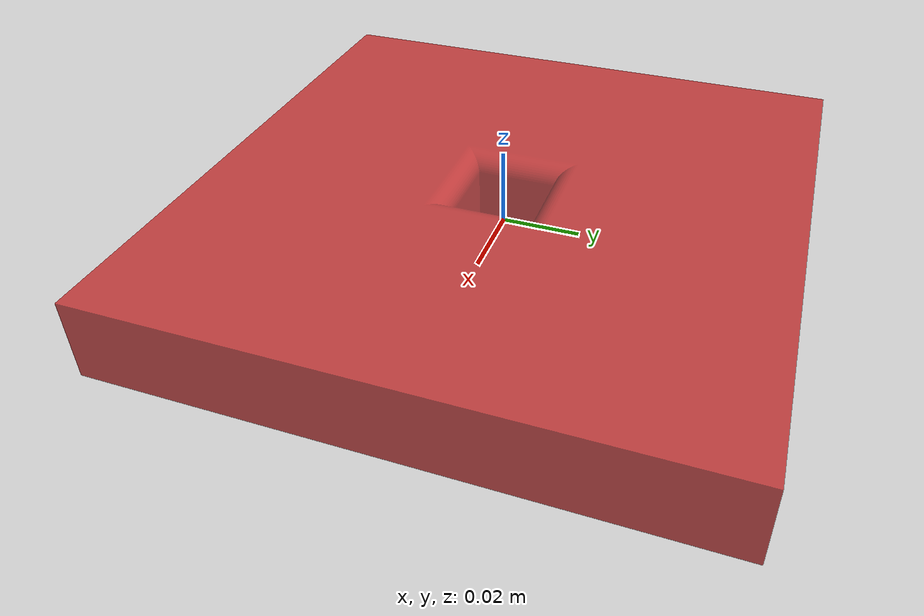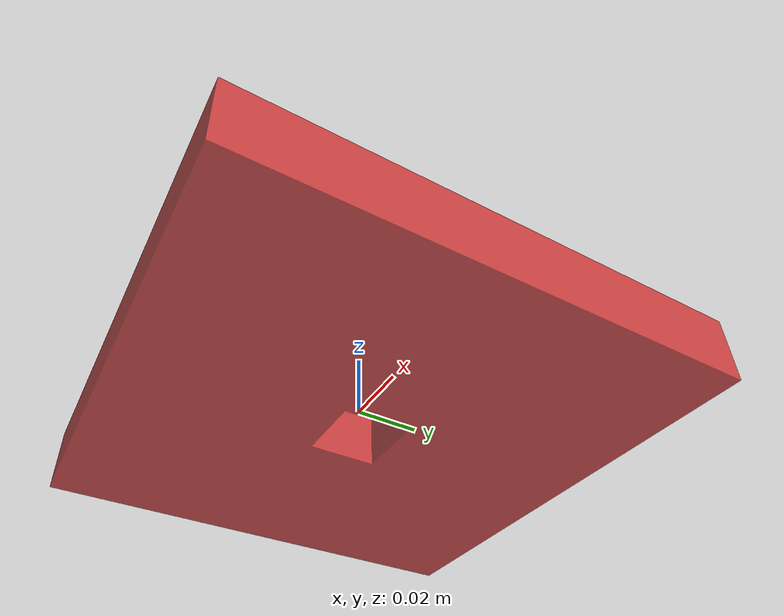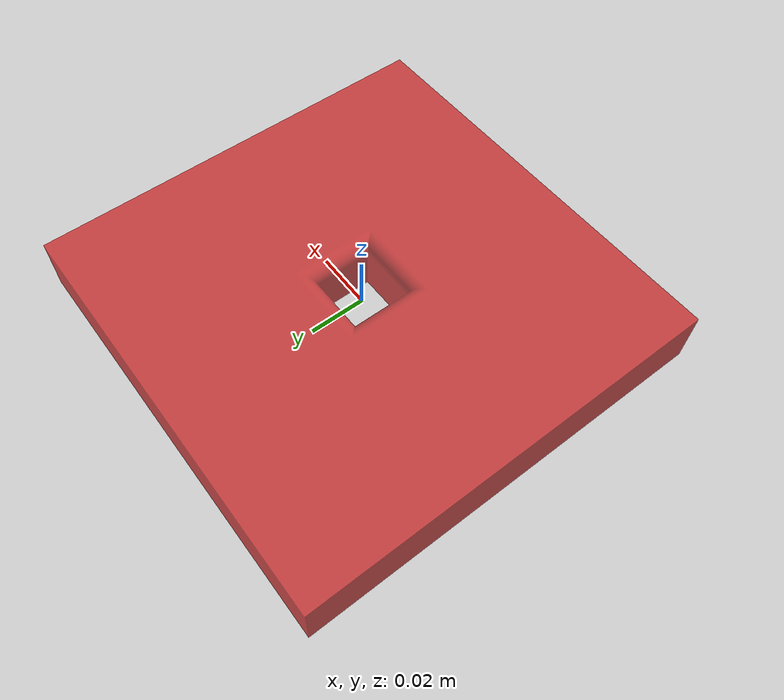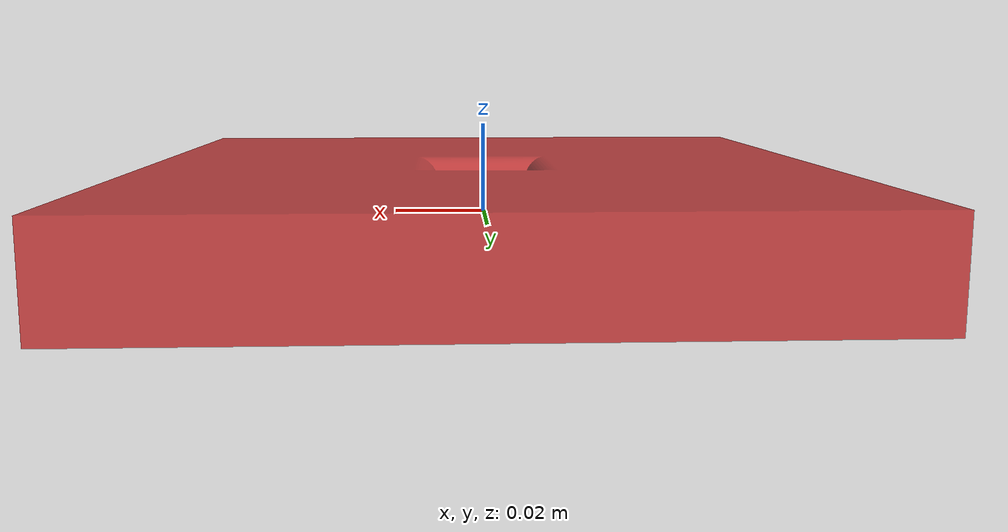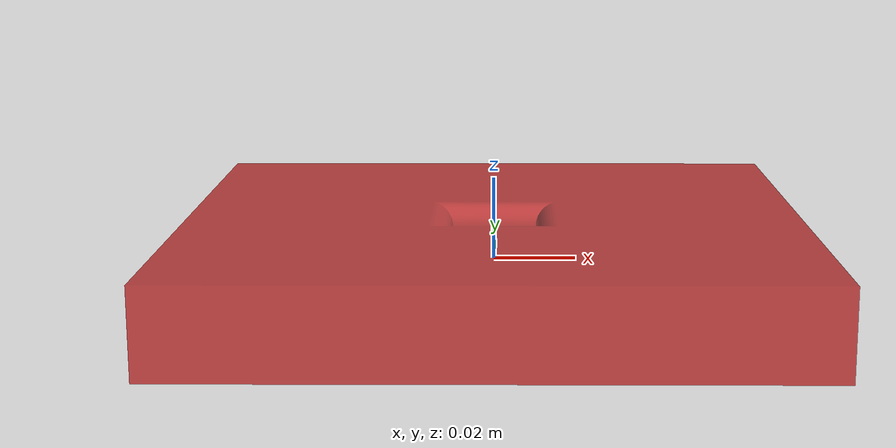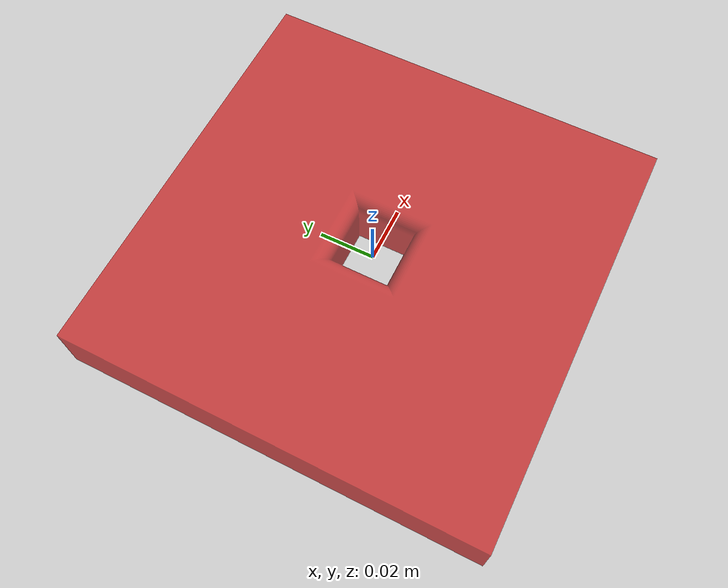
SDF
<?xml version='1.0'?>
<sdf version='1.6'>
  <model name='simple_peg_board'>
    <static>true</static>
    <link name='board'>
      <pose frame=''>0.0 0.0 -0.01 1.5707 0 0</pose>
      <self_collide>0</self_collide>
      <kinematic>0</kinematic>
      <gravity>1</gravity>
      <inertial>
        <mass>1</mass>
        <pose frame=''>0 0 0 0 0 0</pose>
        <inertia>
          <ixx>0.999223</ixx>
          <ixy>0.039421</ixy>
          <ixz>0.000141</ixz>
          <iyy>0.999222</iyy>
          <iyz>-0.001474</iyz>
          <izz>0.999999</izz>
        </inertia>
      </inertial>
      <visual name='visual'>
        <transparency> 0.2 </transparency>
        <pose frame=''>0 0 0 0 0 0</pose>
        <geometry>
          <mesh>
            <uri>model://simple_peg_board/meshes/simple_board.dae</uri>
              <scale>1.0 1.0 1.0</scale>
          </mesh>
        </geometry>
        <material>
          <script>
            <uri>model://media/materials/scripts/gazebo.material</uri>
            <name>Gazebo/Red</name>
          </script>
        </material>
        <transparency>0</transparency>
        <cast_shadows>1</cast_shadows>
      </visual>
      <collision name='collision'>
        <pose frame=''>0 0 0 0 0 0</pose>
        <laser_retro>0</laser_retro>
        <max_contacts>10</max_contacts>
        <geometry>
          <mesh>
            <uri>model://simple_peg_board/meshes/simple_board.dae</uri>
            <scale>1.0 1.0 1.0</scale>
          </mesh>
        </geometry>
        <surface>
          <friction>
            <ode>
              <mu>1</mu>
              <mu2>1</mu2>
              <fdir1>0 0 0</fdir1>
              <slip1>0.1</slip1>
              <slip2>0.1</slip2>
            </ode>
            <torsional>
              <coefficient>1</coefficient>
              <patch_radius>0</patch_radius>
              <surface_radius>0</surface_radius>
              <use_patch_radius>1</use_patch_radius>
              <ode>
                <slip>0</slip>
              </ode>
            </torsional>
          </friction>
          <bounce>
            <restitution_coefficient>0</restitution_coefficient>
            <threshold>1e+06</threshold>
          </bounce>
          <contact>
            <collide_without_contact>0</collide_without_contact>
            <collide_without_contact_bitmask>1</collide_without_contact_bitmask>
            <collide_bitmask>1</collide_bitmask>
            <ode>
              <kp>2.5e+6</kp>
              <kd>1</kd>
              <max_vel>0.01</max_vel>
              <min_depth>0</min_depth>
            </ode>
          </contact>
        </surface>
      </collision>
    </link>
    <static>1</static>
    <allow_auto_disable>1</allow_auto_disable>
  </model>
</sdf>
